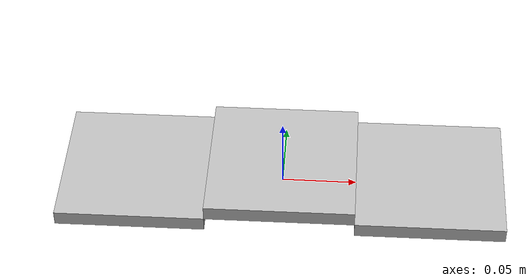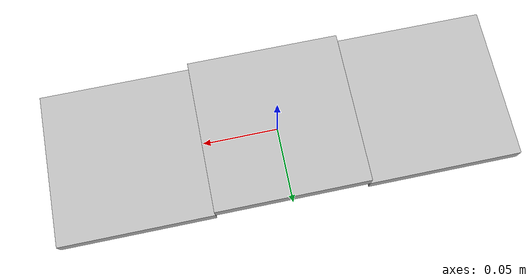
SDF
<?xml version='1.0'?>
<sdf version='1.6'>
		<model name="IJFIL">
			<self_collide>true</self_collide>
			<pose>0.0 0.0 0.0 0.0 0.0 0.0</pose>
			<!-- Start of parts of the pmodel IJFIL -->
			<!-- End of parts of the pmodel IJFIL -->

			<!-- Start of links of the pmodel IJFIL -->
			<!-- link full name is IJFIL::Top -->
			<link name="1-Top">
					<pose>0.0 0.0 0.014999999664723873 0.0 0.0 0.0</pose>
					<inertial>
						<pose>0.0 0.0 0.0 0.0 0.0 0.0</pose>
						<inertia>
							<ixx>1.0</ixx>
							<ixy>0.0</ixy>
							<ixz>0.0</ixz>
							<iyy>1.0</iyy>
							<iyz>0.0</iyz>
							<izz>1.0</izz>
						</inertia>
						<mass>1.0</mass>
					</inertial>
					<!-- body full name is IJFIL::Top::B -->
					<collision name="1--B">
						<laser_retro>0.0</laser_retro>
						<pose>0.0 0.0 0.0 0.0 0.0 0.0</pose>
						<geometry>
							<box>
								<size>0.10000000149011612 0.10000000149011612 0.009999999776482582</size>
							</box>
						</geometry>
						<surface>
							<bounce>
								<restitution_coefficient>0.0</restitution_coefficient>
								<threshold>100000.0</threshold>
							</bounce>
							<friction>
								<ode>
									<mu>1.0</mu>
									<mu2>1.0</mu2>
									<fdir1>0.0 0.0 0.0</fdir1>
									<slip1>0.0</slip1>
									<slip2>0.0</slip2>
								</ode>
								<torsional>
									<coefficient>1.0</coefficient>
									<surface_radius>0.0</surface_radius>
								</torsional>
							</friction>
						</surface>
					</collision>
					<visual name="1--B">
						<laser_retro>0.0</laser_retro>
						<pose>0.0 0.0 0.0 0.0 0.0 0.0</pose>
						<geometry>
							<box>
								<size>0.10000000149011612 0.10000000149011612 0.009999999776482582</size>
							</box>
						</geometry>
						<surface>
							<bounce>
								<restitution_coefficient>0.0</restitution_coefficient>
								<threshold>100000.0</threshold>
							</bounce>
							<friction>
								<ode>
									<mu>1.0</mu>
									<mu2>1.0</mu2>
									<fdir1>0.0 0.0 0.0</fdir1>
									<slip1>0.0</slip1>
									<slip2>0.0</slip2>
								</ode>
								<torsional>
									<coefficient>1.0</coefficient>
									<surface_radius>0.0</surface_radius>
								</torsional>
							</friction>
						</surface>
					</visual>
			</link>
			<!-- link full name is IJFIL::Bottom::1 -->
			<link name="2-Bottom">
					<pose>-0.10000000149011612 0.0 0.004999999888241291 0.0 0.0 0.0</pose>
					<inertial>
						<pose>0.0 0.0 0.0 0.0 0.0 0.0</pose>
						<inertia>
							<ixx>1.0</ixx>
							<ixy>0.0</ixy>
							<ixz>0.0</ixz>
							<iyy>1.0</iyy>
							<iyz>0.0</iyz>
							<izz>1.0</izz>
						</inertia>
						<mass>1.0</mass>
					</inertial>
					<!-- body full name is IJFIL::Bottom::1::B -->
					<collision name="2--B">
						<laser_retro>0.0</laser_retro>
						<pose>0.0 0.0 0.0 0.0 0.0 0.0</pose>
						<geometry>
							<box>
								<size>0.10000000149011612 0.10000000149011612 0.009999999776482582</size>
							</box>
						</geometry>
						<surface>
							<bounce>
								<restitution_coefficient>0.0</restitution_coefficient>
								<threshold>100000.0</threshold>
							</bounce>
							<friction>
								<ode>
									<mu>1.0</mu>
									<mu2>1.0</mu2>
									<fdir1>0.0 0.0 0.0</fdir1>
									<slip1>0.0</slip1>
									<slip2>0.0</slip2>
								</ode>
								<torsional>
									<coefficient>1.0</coefficient>
									<surface_radius>0.0</surface_radius>
								</torsional>
							</friction>
						</surface>
					</collision>
					<visual name="2--B">
						<laser_retro>0.0</laser_retro>
						<pose>0.0 0.0 0.0 0.0 0.0 0.0</pose>
						<geometry>
							<box>
								<size>0.10000000149011612 0.10000000149011612 0.009999999776482582</size>
							</box>
						</geometry>
						<surface>
							<bounce>
								<restitution_coefficient>0.0</restitution_coefficient>
								<threshold>100000.0</threshold>
							</bounce>
							<friction>
								<ode>
									<mu>1.0</mu>
									<mu2>1.0</mu2>
									<fdir1>0.0 0.0 0.0</fdir1>
									<slip1>0.0</slip1>
									<slip2>0.0</slip2>
								</ode>
								<torsional>
									<coefficient>1.0</coefficient>
									<surface_radius>0.0</surface_radius>
								</torsional>
							</friction>
						</surface>
					</visual>
			</link>
			<!-- link full name is IJFIL::Bottom::2 -->
			<link name="3-Bottom">
					<pose>0.10000000149011612 0.0 0.004999999888241291 0.0 0.0 0.0</pose>
					<inertial>
						<pose>0.0 0.0 0.0 0.0 0.0 0.0</pose>
						<inertia>
							<ixx>1.0</ixx>
							<ixy>0.0</ixy>
							<ixz>0.0</ixz>
							<iyy>1.0</iyy>
							<iyz>0.0</iyz>
							<izz>1.0</izz>
						</inertia>
						<mass>1.0</mass>
					</inertial>
					<!-- body full name is IJFIL::Bottom::2::B -->
					<collision name="3--B">
						<laser_retro>0.0</laser_retro>
						<pose>0.0 0.0 0.0 0.0 0.0 0.0</pose>
						<geometry>
							<box>
								<size>0.10000000149011612 0.10000000149011612 0.009999999776482582</size>
							</box>
						</geometry>
						<surface>
							<bounce>
								<restitution_coefficient>0.0</restitution_coefficient>
								<threshold>100000.0</threshold>
							</bounce>
							<friction>
								<ode>
									<mu>1.0</mu>
									<mu2>1.0</mu2>
									<fdir1>0.0 0.0 0.0</fdir1>
									<slip1>0.0</slip1>
									<slip2>0.0</slip2>
								</ode>
								<torsional>
									<coefficient>1.0</coefficient>
									<surface_radius>0.0</surface_radius>
								</torsional>
							</friction>
						</surface>
					</collision>
					<visual name="3--B">
						<laser_retro>0.0</laser_retro>
						<pose>0.0 0.0 0.0 0.0 0.0 0.0</pose>
						<geometry>
							<box>
								<size>0.10000000149011612 0.10000000149011612 0.009999999776482582</size>
							</box>
						</geometry>
						<surface>
							<bounce>
								<restitution_coefficient>0.0</restitution_coefficient>
								<threshold>100000.0</threshold>
							</bounce>
							<friction>
								<ode>
									<mu>1.0</mu>
									<mu2>1.0</mu2>
									<fdir1>0.0 0.0 0.0</fdir1>
									<slip1>0.0</slip1>
									<slip2>0.0</slip2>
								</ode>
								<torsional>
									<coefficient>1.0</coefficient>
									<surface_radius>0.0</surface_radius>
								</torsional>
							</friction>
						</surface>
					</visual>
			</link>
			<!-- End of links of the pmodel IJFIL -->

			<!-- Start of joints of the pmodel IJFIL -->
			<!-- Full name of joint: IJFIL::Bottom::2::PJ::0 from IJFIL::Bottom::2 to IJFIL::Top-->
			<joint name="4-PJ" type="prismatic">
				<pose>0.10000000149011612 0.0 -0.004999999888241291 0.0 -0.0 0.0</pose>
				<parent>3-Bottom</parent>
				<child>1-Top</child>
				<!-- WARNING: The SDF generator relies on annotations of the joint 4-PJ to specify in SDF aspects of the joint that are
					 accounted for in the equations. -->
				<axis>
					<xyz>0 0 1</xyz>
				</axis>
			</joint>
			<!-- Full name of joint: IJFIL::Bottom::1::PJ::0 from IJFIL::Bottom::1 to IJFIL::Top-->
			<joint name="5-PJ" type="prismatic">
				<pose>-0.10000000149011612 0.0 -0.004999999888241291 0.0 -0.0 0.0</pose>
				<parent>2-Bottom</parent>
				<child>1-Top</child>
				<!-- WARNING: The SDF generator relies on annotations of the joint 5-PJ to specify in SDF aspects of the joint that are
					 accounted for in the equations. -->
				<axis>
					<xyz>0 0 1</xyz>
				</axis>
			</joint>
			<!-- Full name of joint: IJFIL::Bottom::2::PJ::1 from IJFIL::Bottom::2 to IJFIL::Top-->
			<joint name="6-PJ" type="prismatic">
				<pose>0.10000000149011612 0.0 -0.004999999888241291 0.0 -0.0 0.0</pose>
				<parent>3-Bottom</parent>
				<child>1-Top</child>
				<!-- WARNING: The SDF generator relies on annotations of the joint 6-PJ to specify in SDF aspects of the joint that are
					 accounted for in the equations. -->
				<axis>
					<xyz>0 0 1</xyz>
				</axis>
			</joint>
			<!-- Full name of joint: IJFIL::Bottom::1::PJ::1 from IJFIL::Bottom::1 to IJFIL::Top-->
			<joint name="7-PJ" type="prismatic">
				<pose>-0.10000000149011612 0.0 -0.004999999888241291 0.0 -0.0 0.0</pose>
				<parent>2-Bottom</parent>
				<child>1-Top</child>
				<!-- WARNING: The SDF generator relies on annotations of the joint 7-PJ to specify in SDF aspects of the joint that are
					 accounted for in the equations. -->
				<axis>
					<xyz>0 0 1</xyz>
				</axis>
			</joint>
			<!-- Full name of joint: IJFIL::Bottom::2::PJ::2 from IJFIL::Bottom::2 to IJFIL::Top-->
			<joint name="8-PJ" type="prismatic">
				<pose>0.10000000149011612 0.0 -0.004999999888241291 0.0 -0.0 0.0</pose>
				<parent>3-Bottom</parent>
				<child>1-Top</child>
				<!-- WARNING: The SDF generator relies on annotations of the joint 8-PJ to specify in SDF aspects of the joint that are
					 accounted for in the equations. -->
				<axis>
					<xyz>0 0 1</xyz>
				</axis>
			</joint>
			<!-- Full name of joint: IJFIL::Bottom::1::PJ::2 from IJFIL::Bottom::1 to IJFIL::Top-->
			<joint name="9-PJ" type="prismatic">
				<pose>-0.10000000149011612 0.0 -0.004999999888241291 0.0 -0.0 0.0</pose>
				<parent>2-Bottom</parent>
				<child>1-Top</child>
				<!-- WARNING: The SDF generator relies on annotations of the joint 9-PJ to specify in SDF aspects of the joint that are
					 accounted for in the equations. -->
				<axis>
					<xyz>0 0 1</xyz>
				</axis>
			</joint>
			<!-- Full name of joint: IJFIL::Bottom::2::PJ::3 from IJFIL::Bottom::2 to IJFIL::Top-->
			<joint name="10-PJ" type="prismatic">
				<pose>0.10000000149011612 0.0 -0.004999999888241291 0.0 -0.0 0.0</pose>
				<parent>3-Bottom</parent>
				<child>1-Top</child>
				<!-- WARNING: The SDF generator relies on annotations of the joint 10-PJ to specify in SDF aspects of the joint that are
					 accounted for in the equations. -->
				<axis>
					<xyz>0 0 1</xyz>
				</axis>
			</joint>
			<!-- Full name of joint: IJFIL::Bottom::1::PJ::3 from IJFIL::Bottom::1 to IJFIL::Top-->
			<joint name="11-PJ" type="prismatic">
				<pose>-0.10000000149011612 0.0 -0.004999999888241291 0.0 -0.0 0.0</pose>
				<parent>2-Bottom</parent>
				<child>1-Top</child>
				<!-- WARNING: The SDF generator relies on annotations of the joint 11-PJ to specify in SDF aspects of the joint that are
					 accounted for in the equations. -->
				<axis>
					<xyz>0 0 1</xyz>
				</axis>
			</joint>
			<!-- End of joints of the pmodel IJFIL -->

			<!-- Start of fixed connections of the pmodel IJFIL -->
			<!-- End of fixed connections of the pmodel IJFIL -->
		</model>
</sdf>
